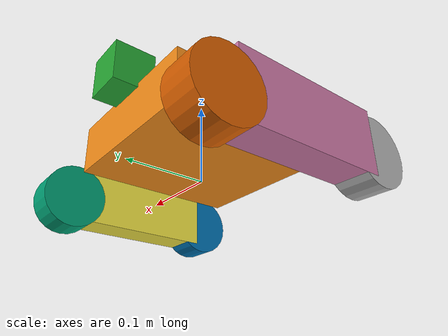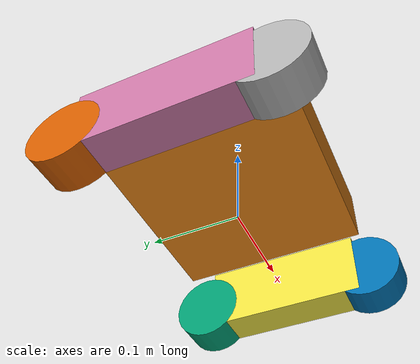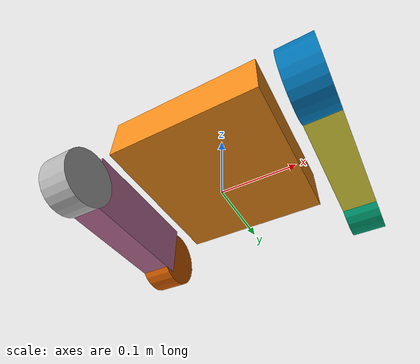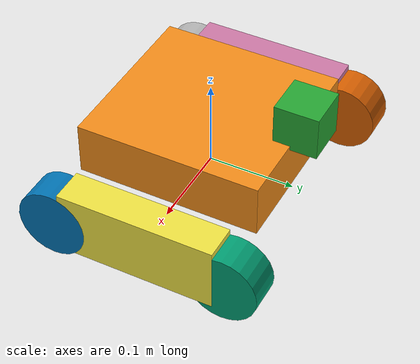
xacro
<?xml version='1.0'?>

<robot name="robot" xmlns:xacro="http://www.ros.org/wiki/xacro">

  <xacro:property name="cameraSize" value="0.05"/>
  <xacro:property name="cameraMass" value="0.1"/>

  <xacro:include filename="$(find virtualrobotv2)/urdf/robot_plugin.xacro" />
  <xacro:include filename="$(find virtualrobotv2)/urdf/materials.xacro" />

  <link name="base_footprint">
   <visual>
      <origin xyz="0 0 0" rpy="0 0 0" />
      <geometry>
        <box size="0.001 0.001 0.001" />
      </geometry>
    </visual>
  </link>

  <joint name="base_link_joint" type="fixed">
    <origin xyz="0 0 0" rpy="0 0 -1.5707" />
    <parent link="base_footprint"/>
    <child link="chassis" />
  </joint>

  <link name='chassis'>
    <pose>0 0 0.1 0 0 0</pose>

    <inertial>
      <mass value="2.5"/>
      <origin xyz="0.0 0 0.05" rpy="0 0 0"/>
      <inertia
          ixx="0.00908" ixy="0" ixz="0"
          iyy="0.0099375" iyz="0"
          izz="0.01752"
      />
    </inertial>

    <collision name='collision'>
      <geometry>
        <box size=".21 .2 .06"/>
      </geometry>
    </collision>

    <visual name='chassis_visual'>
      <origin xyz="0 0 0.05" rpy=" 0 0 0"/>
      <geometry>
        <box size=".21 .2 .06"/>
      </geometry>
    </visual>
  </link>

  <link name="left_wheel_front">
    <!--origin xyz="0.1 0.13 0.1" rpy="0 1.5707 1.5707"/-->
    <collision name="collision">
      <origin xyz="0 0 0" rpy="0 1.5707 1.5707"/>
      <geometry>
        <cylinder radius="0.04" length="0.05"/>
      </geometry>
      <surface>
        <friction>
          <ode>
            <mu>0.1</mu>
            <mu2>0.1</mu2>
          </ode>
      </friction>
      </surface>
    </collision>
    <visual name="left_wheel_front_visual">
      <origin xyz="0 0 0" rpy="0 1.5707 1.5707"/>
      <geometry>
        <cylinder radius="0.04" length="0.04"/>
      </geometry>
    </visual>
    <inertial>
      <mass value="0.8"/>
      <origin xyz="0 0 0" rpy="0 0 0"/>
      <inertia
          ixx="0.000427" ixy="0" ixz="0"
          iyy="0.000427" iyz="0"
          izz="0.00064"
      />
    </inertial>
  </link>

  <link name="left_wheel_middle">
    <!--origin xyz="0.1 0.13 0.1" rpy="0 1.5707 1.5707"/-->
    <collision name="collision">
      <origin xyz="0 0 0.008" rpy="0 1.5707 1.5707"/>
      <geometry>
        <box size=".075 .18 .04"/>
      </geometry>

    </collision>
    <visual name="left_wheel_middle_visual">
      <origin xyz="0 0 0.008" rpy="0 1.5707 1.5707"/>
      <geometry>
        <box size=".075 .18 .04"/>
      </geometry>
    </visual>
    <inertial>
      <origin xyz="0 0 0" rpy="0 1.5707 1.5707"/>
      <mass value="0.4"/>
      <inertia
        ixx="0.00113" ixy="0.0" ixz="0.0"
        iyy="0.000241" iyz="0.0"
        izz="0.0012675"/>
    </inertial>
  </link>

  <link name="left_wheel">
    <!--origin xyz="0.1 0.13 0.1" rpy="0 1.5707 1.5707"/-->
    <collision name="collision">
      <origin xyz="0 0 0" rpy="0 1.5707 1.5707"/>
      <geometry>
        <cylinder radius="0.04" length="0.05"/>
      </geometry>
      <surface>
        <friction>
          <ode>friction
            <mu>1</mu>
            <mu2>1</mu2>
          </ode>
        </friction>
      </surface>
    </collision>
    <visual name="left_whemassel_visual">
      <origin xyz="0 0 0" rpy="0 1.5707 1.5707"/>
      <geometry>
        <cylinder radius="0.04" length="0.04"/>
      </geometry>
    </visual>
    <inertial>
      <origin xyz="0 0 0" rpy="0 1.5707 1.5707"/>
      <mass value="0.8"/>
      <inertia
        ixx="0.000213" ixy="0.0" ixz="0.0"
        iyy="0.000213" iyz="0.0"
        izz="0.00032"/>
    </inertial>
  </link>

  <link name="right_wheel_front">
    <!--origin xyz="0.1 0.13 0.1" rpy="0 1.5707 1.5707"/-->
    <collision name="collision">
      <origin xyz="0 0 0" rpy="0 1.5707 1.5707"/>
      <geometry>
        <cylinder radius="0.04" length="0.05"/>
      </geometry>
      <surface>
        <friction>
          <ode>
            <mu>0.1</mu>
            <mu2>0.1</mu2>
          </ode>
        </friction>
      </surface>
    </collision>
    <visual name="right_wheel_front_visual">
      <origin xyz="0 0 0" rpy="0 1.5707 1.5707"/>
      <geometry>
        <cylinder radius="0.04" length="0.04"/>
      </geometry>
    </visual>
    <inertial>
      <mass value="0.8"/>
      <origin xyz="0 0 0" rpy="0 0 0"/>
      <inertia
          ixx="0.000427" ixy="0" ixz="0"
          iyy="0.000427" iyz="0"
          izz="0.00064"
      />
    </inertial>
  </link>

  <link name="right_wheel_middle">
    <!--origin xyz="0.1 0.13 0.1" rpy="0 1.5707 1.5707"/-->
    <collision name="collision">
      <origin xyz="0 0 0.008" rpy="0 1.5707 1.5707"/>
      <geometry>
        <box size=".075 .18 .04"/>
      </geometry>
    </collision>
    <visual name="right_wheel_middle_visual">
      <origin xyz="0 0 0.008" rpy="0 1.5707 1.5707"/>
      <geometry>
        <box size=".075 .18 .04"/>
      </geometry>
    </visual>
    <inertial>
      <origin xyz="0 0 0" rpy="0 1.5707 1.5707"/>
      <mass value="0.4"/>
      <inertia
        ixx="0.00113" ixy="0.0" ixz="0.0"
        iyy="0.000241" iyz="0.0"
        izz="0.0012675"/>
    </inertial>
  </link>

  <link name="right_wheel">
    <!--origin xyz="0.1 0.13 0.1" rpy="0 1.5707 1.5707"/-->
    <collision name="collision">
      <origin xyz="0 0 0" rpy="0 1.5707 1.5707"/>
      <geometry>
        <cylinder radius="0.04" length="0.05"/>
      </geometry>
      <surface>
        <friction>
          <ode>
            <mu>1</mu>
            <mu2>1</mu2>
          </ode>
        </friction>
      </surface>
    </collision>
    <visual name="right_wheel_visual">
      <origin xyz="0 0 0" rpy="0 1.5707 1.5707"/>
      <geometry>
        <cylinder radius="0.04" length="0.04"/>
      </geometry>
    </visual>
    <inertial>
      <origin xyz="0 0 0" rpy="0 1.5707 1.5707"/>
      <mass value="0.8"/>
      <inertia
        ixx="0.000213" ixy="0.0" ixz="0.0"
        iyy="0.000213" iyz="0.0"
        izz="0.00032"/>
    </inertial>
  </link>

  <joint type="continuous" name="left_wheel_hinge">
    <origin xyz="0.1 0.15 0" rpy="0 0 0"/>
    <child link="left_wheel"/>
    <parent link="chassis"/>
    <axis xyz="0 1 0" rpy="0 0 0"/>
    <limit effort="100" velocity="100"/>
    <joint_properties damping="0.0" friction="0.0"/>
  </joint>

  <joint type="continuous" name="right_wheel_hinge">
    <origin xyz="0.1 -0.15 0" rpy="0 0 0"/>
    <child link="right_wheel"/>
    <parent link="chassis"/>
    <axis xyz="0 1 0" rpy="0 0 0"/>
    <limit effort="100" velocity="100"/>
    <joint_properties damping="0.0" friction="0.0"/>
  </joint>

  <joint type="continuous" name="left_wheel_front_hinge">
    <origin xyz="-0.1 0.15 0" rpy="0 0 0"/>
    <child link="left_wheel_front"/>
    <parent link="chassis"/>
    <axis xyz="0 1 0" rpy="0 0 0"/>
    <limit effort="100" velocity="100"/>
    <joint_properties damping="0.0" friction="0.0"/>
  </joint>

  <joint type="fixed" name="left_wheel_middle_hinge">
    <origin xyz="0 0.15 0.00" rpy="0 0 0"/>
    <child link="left_wheel_middle"/>
    <parent link="chassis"/>
    <axis xyz="0 1 0" rpy="0 0 0"/>
    <limit effort="100" velocity="100"/>
    <joint_properties damping="0.0" friction="0.0"/>
  </joint>

  <joint type="continuous" name="right_wheel_front_hinge">
    <origin xyz="-0.1 -0.15 0" rpy="0 0 0"/>
    <child link="right_wheel_front"/>
    <parent link="chassis"/>
    <axis xyz="0 1 0" rpy="0 0 0"/>
    <limit effort="100" velocity="100"/>
    <joint_properties damping="0.0" friction="0.0"/>
  </joint>

  <joint type="fixed" name="right_wheel_middle_hinge">
    <origin xyz="0 -0.15 0.00" rpy="0 0 0"/>
    <child link="right_wheel_middle"/>
    <parent link="chassis"/>
    <axis xyz="0 1 0" rpy="0 0 0"/>
    <limit effort="100" velocity="100"/>
    <joint_properties damping="0.0" friction="0.0"/>
  </joint>

  <link name="camera">
    <collision>
      <origin xyz="0 0 0" rpy="0 0 -3.1415"/>
      <geometry>
        <box size="${cameraSize} ${cameraSize} ${cameraSize}"/>
      </geometry>
    </collision>

    <visual>
      <origin xyz="0 0 0" rpy="0 0 -3.1415"/>
      <geometry>
        <box size="${cameraSize} ${cameraSize} ${cameraSize}"/>
      </geometry>
      <material name="green"/>
    </visual>

    <inertial>
      <mass value="${cameraMass}" />
      <origin xyz="0 0 0" rpy="0 0 -3.1415"/>
      <box_inertia m="${cameraMass}" x="${cameraSize}" y="${cameraSize}" z="${cameraSize}" />
      <inertia ixx="1e-6" ixy="0" ixz="0" iyy="1e-6" iyz="0" izz="1e-6" />
    </inertial>
  </link>

  <joint name="camera_joint" type="fixed">
    <axis xyz="0.18 1 0" />
    <origin xyz="-0.11 0 0.1" rpy="0 0 -3.1415"/>
    <parent link="chassis"/>
    <child link="camera"/>
  </joint>

</robot>
